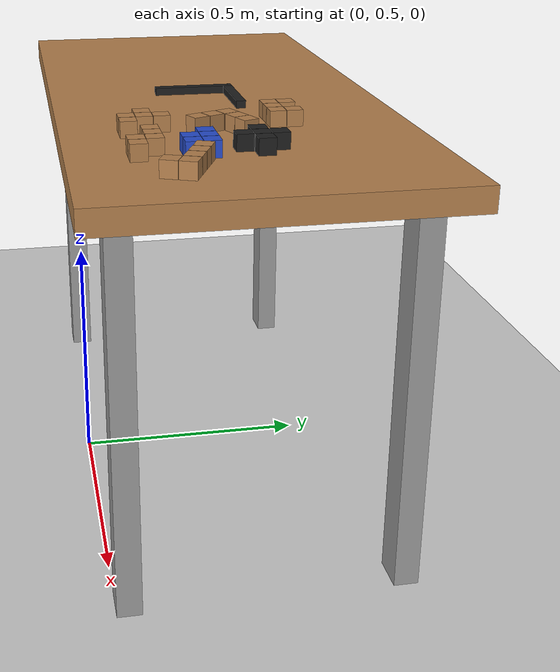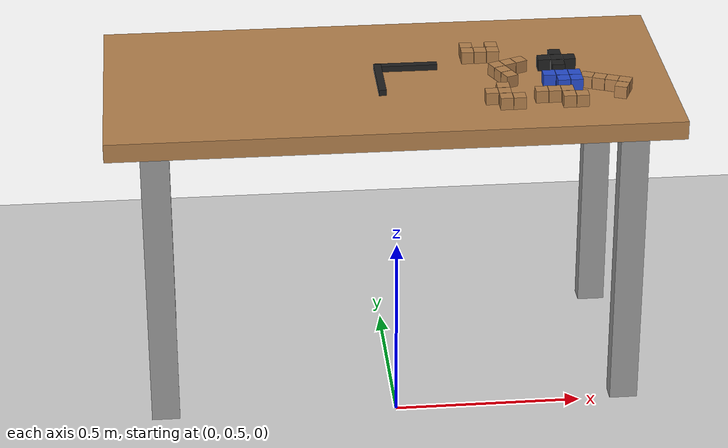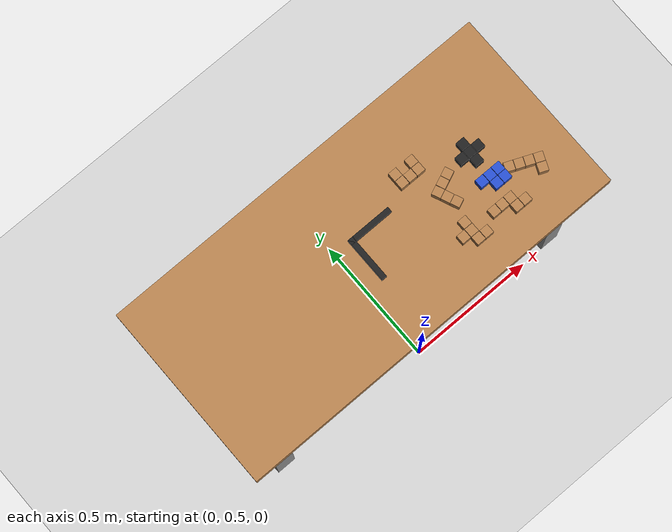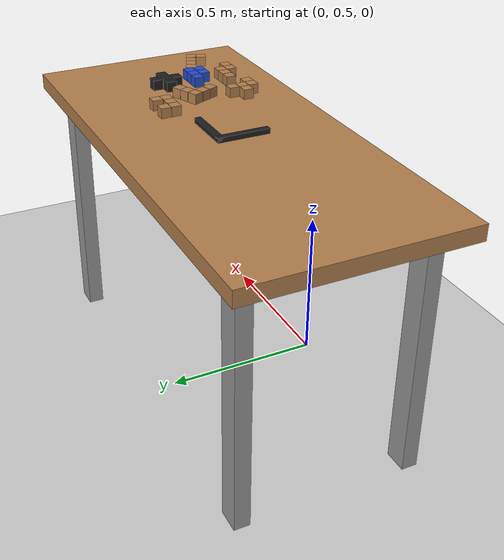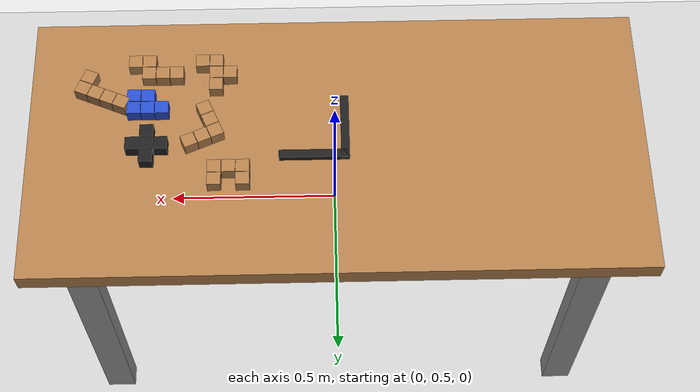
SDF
<?xml version="1.0" ?>
<!-- |    This document was autogenerated by xacro from euroc-freestyle.world.xacro    | -->
<!-- |    EDITING THIS FILE BY HAND IS NOT RECOMMENDED                                 | -->
<sdf version="1.4" xmlns:xacro="http://www.ros.org/wiki/xacro">
  <!-- only 4 yaws are allowed, given by tQ -->
  <!-- Only 0 and 3 (rotated -pi/2) accepted by now -->
  <!-- table pose in world frame -->
  <!-- pentomino-fixture name and pose in table frame -->
  <!-- grid pose in pentomino-fixture frame -->
  <!-- pentomino pose in grid frame -->
  <world name="pentomino_board6x5_8">
    <include>
      <uri>model://ground_plane</uri>
    </include>
    <include>
      <uri>model://sun</uri>
    </include>
    <include>
      <uri>model://DLR_workbench</uri>
      <name>workbench_fixture</name>
      <pose>0 0.8 00 0 0 4.71238898038</pose>
      <static>true</static>
    </include>
    <include>
      <uri>model://pentomino_fixture</uri>
      <pose>-0.01 0.83 0.85 0 0 4.71238898038</pose>
    </include>
    <include>
      <uri>model://pentomino_V</uri>
      <!-- if tQ == 3 -->
      <pose>0.293 0.78 0.85 0 0.0 5.11381470834</pose>
    </include>
    <include>
      <uri>model://pentomino_N</uri>
      <!-- if tQ == 3 -->
      <pose>0.458 0.615 0.883 0 3.14159265359 4.71238898038</pose>
    </include>
    <include>
      <uri>model://pentomino_F</uri>
      <!-- if tQ == 3 -->
      <pose>0.293 0.615 0.883 0 3.14159265359 4.71238898038</pose>
    </include>
    <include>
      <uri>model://pentomino_U</uri>
      <!-- if tQ == 3 -->
      <pose>0.26 0.879 0.85 0 0.0 4.71238898038</pose>
    </include>
    <include>
      <uri>model://pentomino_X</uri>
      <!-- if tQ == 3 -->
      <pose>0.458 0.813 0.85 0 0.0 4.71238898038</pose>
    </include>
    <include>
      <uri>model://pentomino_P</uri>
      <!-- if tQ == 3 -->
      <pose>0.458 0.714 0.85 0 0.0 4.71238898038</pose>
    </include>

    <include>
      <uri>model://pentomino_L</uri>
      <!-- if tQ == 3 -->
      <pose>0.586 0.668 0.850 0 0 -1.971889</pose>
    </include>

  </world>
</sdf>
